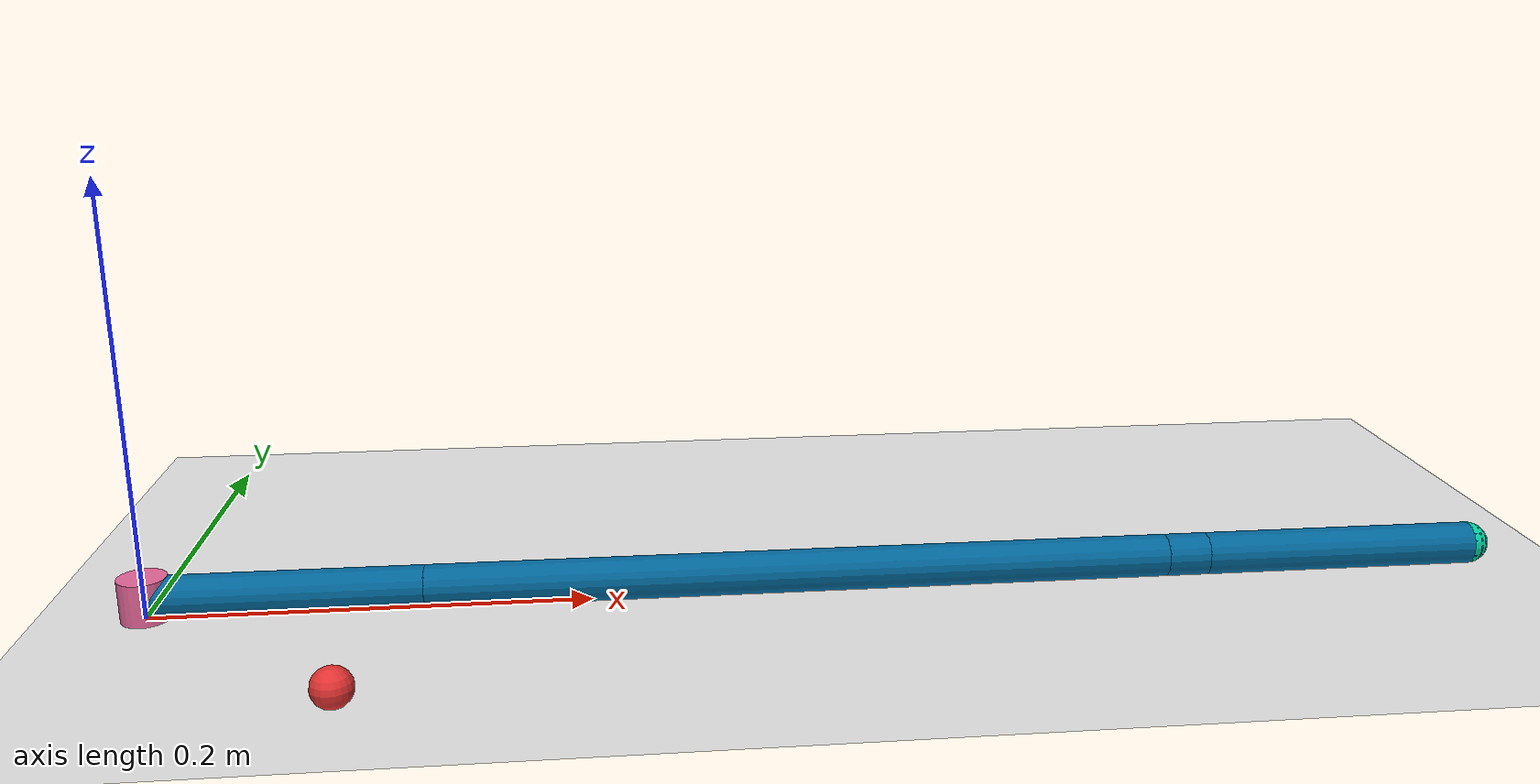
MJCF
<mujoco model="reacher">
  <compiler angle="radian" inertiafromgeom="true"/>
  <option timestep="0.01" gravity="0 0 -9.81" integrator="RK4"/>
  <default>
    <default class="/">
      <joint limited="true" armature="1" damping="1"/>
      <geom contype="0" rgba="0.7 0.7 0 1" friction="1 0.1 0.1"/>
    </default>
  </default>
  <custom>
    <numeric name="ndims" size="1" data="2"/>
    <numeric name="njoints" size="1" data="4"/>
  </custom>
  <worldbody>
    <geom name="ground" class="/" type="plane" contype="0" conaffinity="0" size="1 1 10" rgba="0.9 0.9 0.9 1" pos="0 0 0"/>
    <geom name="root" class="/" type="cylinder" contype="0" conaffinity="0" size="0.011" rgba="0.9 0.4 0.6 1" fromto="0 0 0 0 0 0.02"/>
    <body name="base" pos="0 0 0.01">
      <geom name="link0" class="/" type="capsule" size="0.01" rgba="0 0.4 0.6 1" fromto="0 0 0 0.1242 0 0"/>
      <joint name="j0" class="/" type="hinge" pos="0 0 0" axis="0 0 1" limited="true" range="-3 3"/>
      <body name="j0" pos="0.1242 0 0">
        <joint name="j1" class="/" type="hinge" pos="0 0 0" axis="0 0 1" limited="true" range="-3 3"/>
        <geom name="link1" class="/" type="capsule" size="0.01" rgba="0 0.4 0.6 1" fromto="0 0 0 0.3485 0 0"/>
        <body name="j1" pos="0.3485 0 0">
          <joint name="j2" class="/" type="hinge" pos="0 0 0" axis="0 0 1" limited="true" range="-3 3"/>
          <geom name="link2" class="/" type="capsule" size="0.01" rgba="0 0.4 0.6 1" fromto="0 0 0 0.01997 0 0"/>
          <body name="j2" pos="0.01997 0 0">
            <joint name="j3" class="/" type="hinge" pos="0 0 0" axis="0 0 1" limited="true" range="-3 3"/>
            <geom name="link3" class="/" type="capsule" size="0.01" rgba="0 0.4 0.6 1" fromto="0 0 0 0.1324 0 0"/>
            <body name="j3" pos="0.1324 0 0">
              <geom name="fingertip" class="/" type="sphere" contype="0" size="0.01" rgba="0 0.8 0.6 1" pos="0 0 0"/>
            </body>
          </body>
        </body>
      </body>
    </body>
    <body name="target" pos="0.1 -0.1 0.01" gravcomp="1">
      <joint name="target_x" class="/" type="slide" pos="0 0 0" axis="1 0 0" limited="false" armature="0" damping="0"/>
      <joint name="target_y" class="/" type="slide" pos="0 0 0" axis="0 1 0" limited="false" armature="0" damping="0"/>
      <joint name="target_z" class="/" type="slide" pos="0 0 0" axis="0 0 1" limited="false" armature="0" damping="0"/>
      <geom name="target" class="/" type="sphere" contype="0" conaffinity="0" size="0.009" rgba="0.9 0.2 0.2 1" pos="0 0 0"/>
    </body>
  </worldbody>
  <actuator>
    <motor name="//unnamed_actuator_0" class="/" ctrllimited="true" ctrlrange="-1 1" gear="200" joint="j0"/>
    <motor name="//unnamed_actuator_1" class="/" ctrllimited="true" ctrlrange="-1 1" gear="200" joint="j1"/>
    <motor name="//unnamed_actuator_2" class="/" ctrllimited="true" ctrlrange="-1 1" gear="200" joint="j2"/>
    <motor name="//unnamed_actuator_3" class="/" ctrllimited="true" ctrlrange="-1 1" gear="200" joint="j3"/>
  </actuator>
</mujoco>
